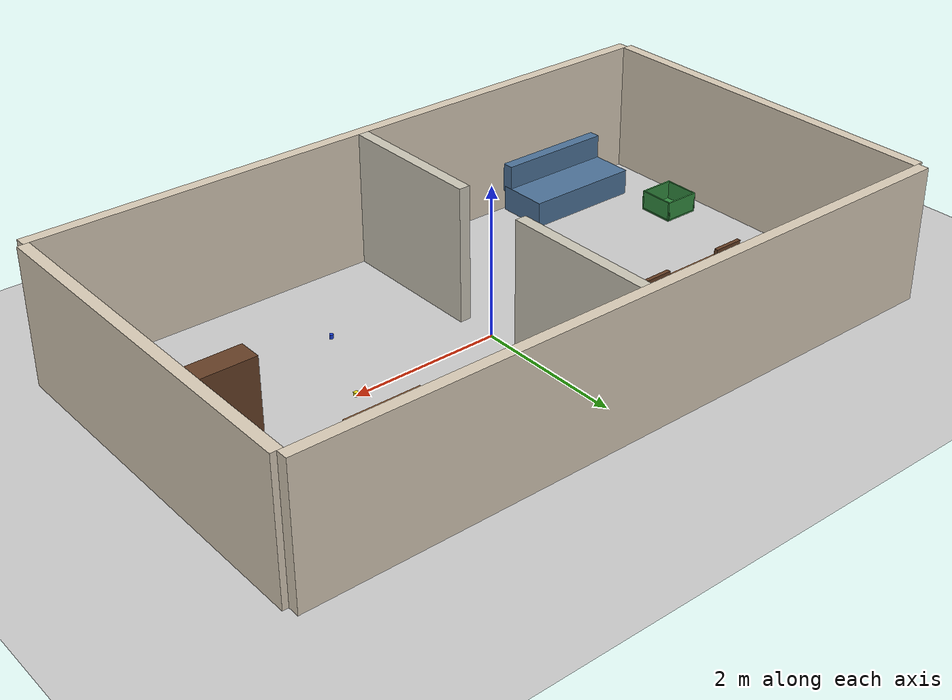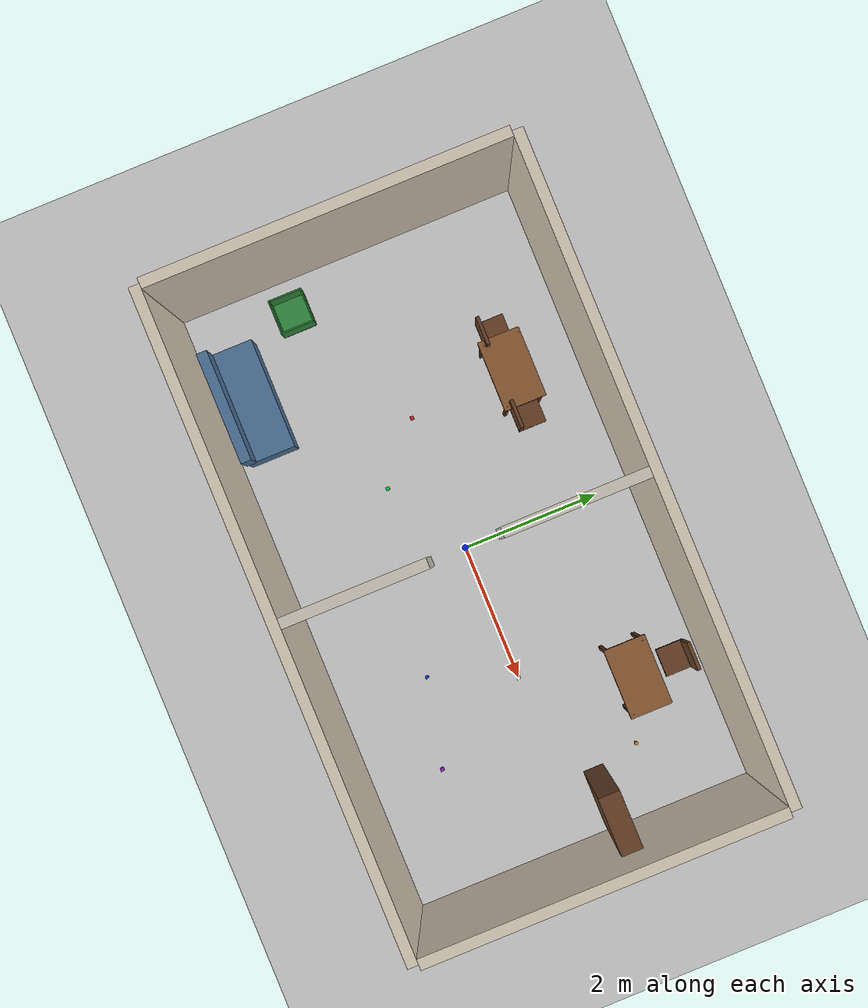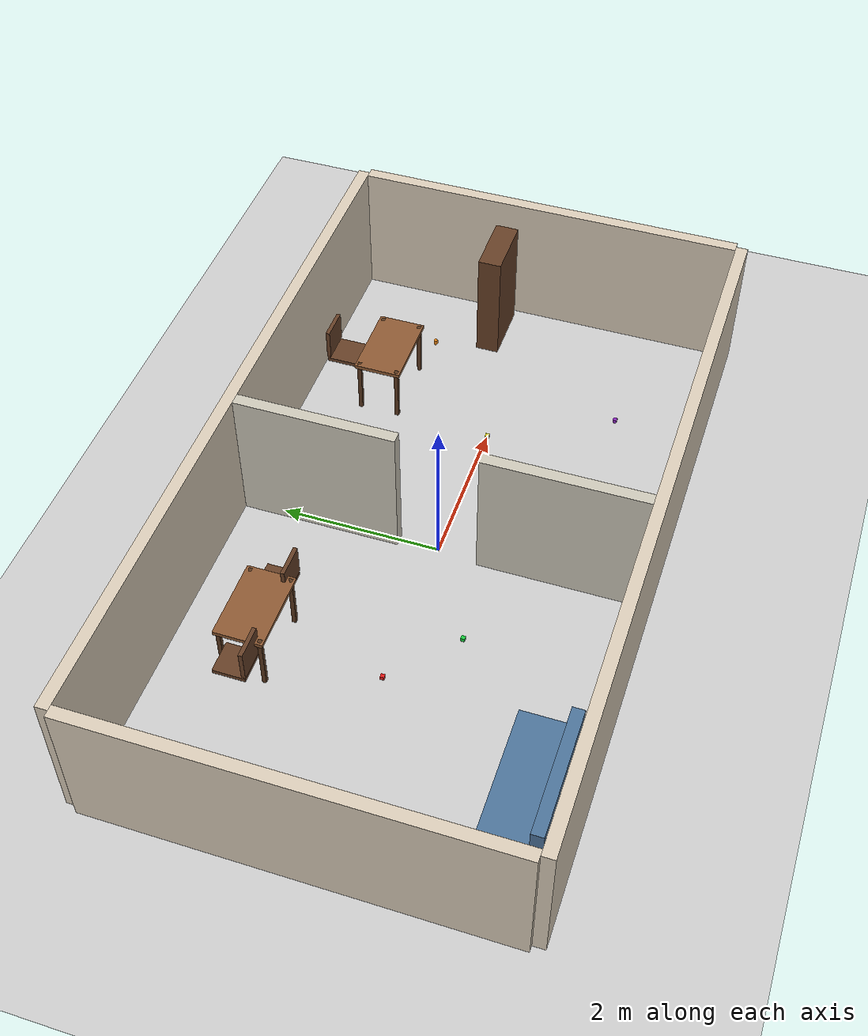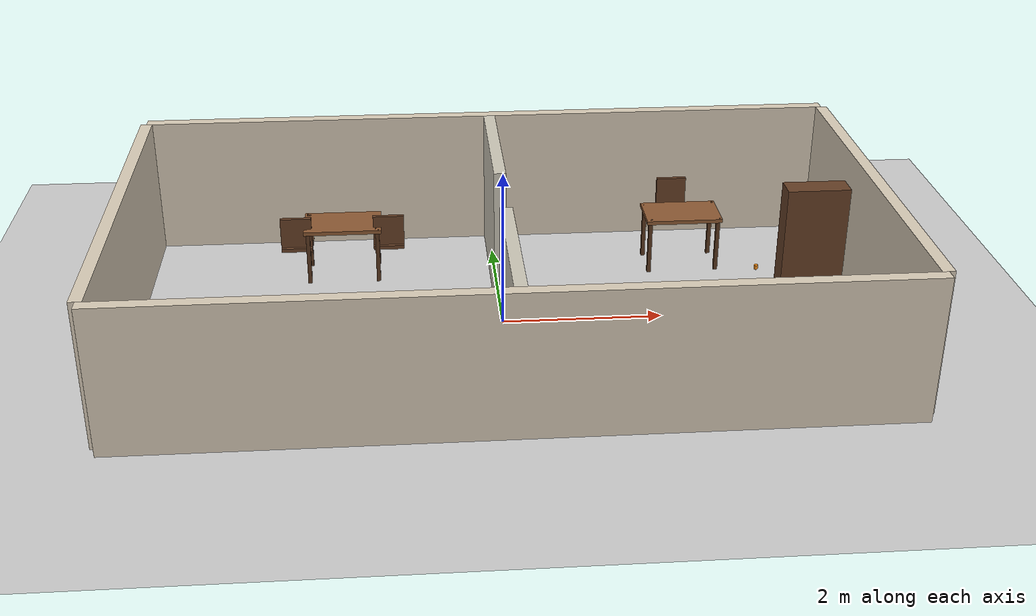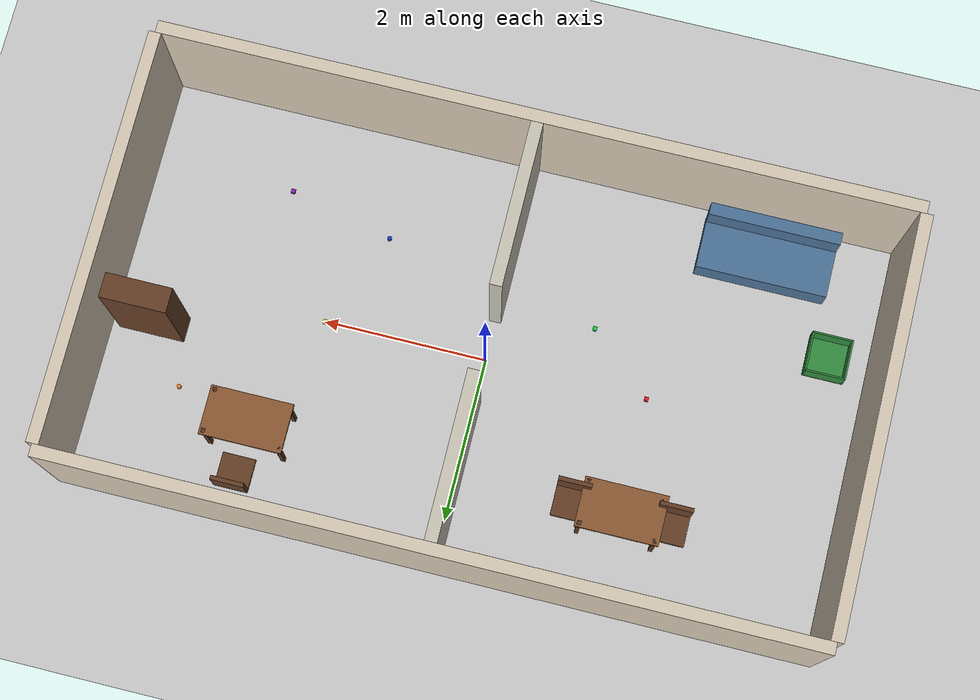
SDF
<?xml version="1.0" ?>
<sdf version="1.6">
  <world name="home">
    <include><uri>model://sun</uri></include>
    <include><uri>model://ground_plane</uri></include>

    <physics type="ode">
      <max_step_size>0.001</max_step_size>
      <real_time_update_rate>1000</real_time_update_rate>
      <real_time_factor>1.0</real_time_factor>
      <ode>
        <solver>
          <type>quick</type>
          <iters>50</iters>
          <sor>1.3</sor>
        </solver>
        <constraints>
          <cfm>0.0</cfm>
          <erp>0.2</erp>
          <contact_max_correcting_vel>100.0</contact_max_correcting_vel>
          <contact_surface_layer>0.001</contact_surface_layer>
        </constraints>
      </ode>
    </physics>

    <gravity>0 0 -9.81</gravity>

    <!-- Override ground plane friction (default is glass-smooth). -->
    <model name="ground_friction_override">
      <static>true</static>
      <link name="link">
        <collision name="c">
          <geometry><plane><normal>0 0 1</normal><size>20 20</size></plane></geometry>
          <surface>
            <friction>
              <ode><mu>0.8</mu><mu2>0.8</mu2></ode>
            </friction>
          </surface>
        </collision>
      </link>
    </model>

    <light name="room_light_A" type="point">
      <pose>-2 0 2.2 0 0 0</pose>
      <diffuse>0.9 0.9 0.9 1</diffuse>
      <specular>0.1 0.1 0.1 1</specular>
      <attenuation><range>8</range><linear>0.05</linear></attenuation>
      <cast_shadows>false</cast_shadows>
    </light>
    <light name="room_light_B" type="point">
      <pose>2.5 0 2.2 0 0 0</pose>
      <diffuse>0.9 0.9 0.9 1</diffuse>
      <specular>0.1 0.1 0.1 1</specular>
      <attenuation><range>8</range><linear>0.05</linear></attenuation>
      <cast_shadows>false</cast_shadows>
    </light>

    <!-- ======================================================
         WALLS — 0.15 m thick, 1.8 m tall
         ====================================================== -->
    <model name="walls">
      <static>true</static>

      <!-- North outer wall (y = +2.5) -->
      <link name="wall_north">
        <pose>0 2.575 0.9 0 0 0</pose>
        <collision name="c"><geometry><box><size>9.15 0.15 1.8</size></box></geometry></collision>
        <visual name="v">
          <geometry><box><size>9.15 0.15 1.8</size></box></geometry>
          <material><ambient>0.85 0.80 0.72 1</ambient><diffuse>0.85 0.80 0.72 1</diffuse></material>
        </visual>
      </link>

      <!-- South outer wall (y = -2.5) -->
      <link name="wall_south">
        <pose>0 -2.575 0.9 0 0 0</pose>
        <collision name="c"><geometry><box><size>9.15 0.15 1.8</size></box></geometry></collision>
        <visual name="v">
          <geometry><box><size>9.15 0.15 1.8</size></box></geometry>
          <material><ambient>0.85 0.80 0.72 1</ambient><diffuse>0.85 0.80 0.72 1</diffuse></material>
        </visual>
      </link>

      <!-- West outer wall (x = -4.5) -->
      <link name="wall_west">
        <pose>-4.575 0 0.9 0 0 0</pose>
        <collision name="c"><geometry><box><size>0.15 5.0 1.8</size></box></geometry></collision>
        <visual name="v">
          <geometry><box><size>0.15 5.0 1.8</size></box></geometry>
          <material><ambient>0.85 0.80 0.72 1</ambient><diffuse>0.85 0.80 0.72 1</diffuse></material>
        </visual>
      </link>

      <!-- East outer wall (x = +4.5) -->
      <link name="wall_east">
        <pose>4.575 0 0.9 0 0 0</pose>
        <collision name="c"><geometry><box><size>0.15 5.0 1.8</size></box></geometry></collision>
        <visual name="v">
          <geometry><box><size>0.15 5.0 1.8</size></box></geometry>
          <material><ambient>0.85 0.80 0.72 1</ambient><diffuse>0.85 0.80 0.72 1</diffuse></material>
        </visual>
      </link>

      <!-- Divider north half (from y=0.5 to y=2.5) -->
      <link name="wall_divider_n">
        <pose>0 1.5 0.9 0 0 0</pose>
        <collision name="c"><geometry><box><size>0.15 2.0 1.8</size></box></geometry></collision>
        <visual name="v">
          <geometry><box><size>0.15 2.0 1.8</size></box></geometry>
          <material><ambient>0.80 0.78 0.72 1</ambient><diffuse>0.80 0.78 0.72 1</diffuse></material>
        </visual>
      </link>

      <!-- Divider south half (from y=-2.5 to y=-0.5) -->
      <link name="wall_divider_s">
        <pose>0 -1.5 0.9 0 0 0</pose>
        <collision name="c"><geometry><box><size>0.15 2.0 1.8</size></box></geometry></collision>
        <visual name="v">
          <geometry><box><size>0.15 2.0 1.8</size></box></geometry>
          <material><ambient>0.80 0.78 0.72 1</ambient><diffuse>0.80 0.78 0.72 1</diffuse></material>
        </visual>
      </link>
    </model>

    <!-- ======================================================
         FURNITURE — Room A (x < 0)
         ====================================================== -->
    <model name="table_a">
      <static>true</static>
      <pose>-2 1.5 0.375 0 0 0</pose>
      <link name="link">
        <collision name="top"><geometry><box><size>1.0 0.6 0.05</size></box></geometry>
          <pose>0 0 0.35 0 0 0</pose></collision>
        <visual name="top_v"><geometry><box><size>1.0 0.6 0.05</size></box></geometry>
          <pose>0 0 0.35 0 0 0</pose>
          <material><ambient>0.55 0.35 0.20 1</ambient><diffuse>0.55 0.35 0.20 1</diffuse></material></visual>
        <!-- 4 legs -->
        <collision name="leg_fl"><pose> 0.45  0.25 0 0 0 0</pose>
          <geometry><box><size>0.05 0.05 0.75</size></box></geometry></collision>
        <visual name="leg_fl_v"><pose> 0.45  0.25 0 0 0 0</pose>
          <geometry><box><size>0.05 0.05 0.75</size></box></geometry>
          <material><ambient>0.35 0.22 0.12 1</ambient><diffuse>0.35 0.22 0.12 1</diffuse></material></visual>
        <collision name="leg_fr"><pose> 0.45 -0.25 0 0 0 0</pose>
          <geometry><box><size>0.05 0.05 0.75</size></box></geometry></collision>
        <visual name="leg_fr_v"><pose> 0.45 -0.25 0 0 0 0</pose>
          <geometry><box><size>0.05 0.05 0.75</size></box></geometry>
          <material><ambient>0.35 0.22 0.12 1</ambient><diffuse>0.35 0.22 0.12 1</diffuse></material></visual>
        <collision name="leg_rl"><pose>-0.45  0.25 0 0 0 0</pose>
          <geometry><box><size>0.05 0.05 0.75</size></box></geometry></collision>
        <visual name="leg_rl_v"><pose>-0.45  0.25 0 0 0 0</pose>
          <geometry><box><size>0.05 0.05 0.75</size></box></geometry>
          <material><ambient>0.35 0.22 0.12 1</ambient><diffuse>0.35 0.22 0.12 1</diffuse></material></visual>
        <collision name="leg_rr"><pose>-0.45 -0.25 0 0 0 0</pose>
          <geometry><box><size>0.05 0.05 0.75</size></box></geometry></collision>
        <visual name="leg_rr_v"><pose>-0.45 -0.25 0 0 0 0</pose>
          <geometry><box><size>0.05 0.05 0.75</size></box></geometry>
          <material><ambient>0.35 0.22 0.12 1</ambient><diffuse>0.35 0.22 0.12 1</diffuse></material></visual>
      </link>
    </model>

    <model name="chair_a1">
      <static>true</static>
      <pose>-2.6 1.5 0.25 0 0 0</pose>
      <link name="link">
        <collision name="seat"><geometry><box><size>0.4 0.4 0.05</size></box></geometry>
          <pose>0 0 0.2 0 0 0</pose></collision>
        <visual name="seat_v"><geometry><box><size>0.4 0.4 0.05</size></box></geometry>
          <pose>0 0 0.2 0 0 0</pose>
          <material><ambient>0.40 0.25 0.15 1</ambient><diffuse>0.40 0.25 0.15 1</diffuse></material></visual>
        <collision name="back"><geometry><box><size>0.4 0.05 0.4</size></box></geometry>
          <pose>0 -0.18 0.45 0 0 0</pose></collision>
        <visual name="back_v"><geometry><box><size>0.4 0.05 0.4</size></box></geometry>
          <pose>0 -0.18 0.45 0 0 0</pose>
          <material><ambient>0.40 0.25 0.15 1</ambient><diffuse>0.40 0.25 0.15 1</diffuse></material></visual>
      </link>
    </model>

    <model name="chair_a2">
      <static>true</static>
      <pose>-1.4 1.5 0.25 0 0 0</pose>
      <link name="link">
        <collision name="seat"><geometry><box><size>0.4 0.4 0.05</size></box></geometry>
          <pose>0 0 0.2 0 0 0</pose></collision>
        <visual name="seat_v"><geometry><box><size>0.4 0.4 0.05</size></box></geometry>
          <pose>0 0 0.2 0 0 0</pose>
          <material><ambient>0.40 0.25 0.15 1</ambient><diffuse>0.40 0.25 0.15 1</diffuse></material></visual>
        <collision name="back"><geometry><box><size>0.4 0.05 0.4</size></box></geometry>
          <pose>0 -0.18 0.45 0 0 0</pose></collision>
        <visual name="back_v"><geometry><box><size>0.4 0.05 0.4</size></box></geometry>
          <pose>0 -0.18 0.45 0 0 0</pose>
          <material><ambient>0.40 0.25 0.15 1</ambient><diffuse>0.40 0.25 0.15 1</diffuse></material></visual>
      </link>
    </model>

    <model name="couch">
      <static>true</static>
      <pose>-3 -2.0 0 0 0 0</pose>
      <link name="link">
        <!-- seat base -->
        <collision name="seat"><pose>0 0 0.25 0 0 0</pose>
          <geometry><box><size>1.6 0.7 0.35</size></box></geometry></collision>
        <visual name="seat_v"><pose>0 0 0.25 0 0 0</pose>
          <geometry><box><size>1.6 0.7 0.35</size></box></geometry>
          <material><ambient>0.30 0.45 0.60 1</ambient><diffuse>0.30 0.45 0.60 1</diffuse></material></visual>
        <!-- back -->
        <collision name="back"><pose>0 -0.30 0.55 0 0 0</pose>
          <geometry><box><size>1.6 0.15 0.4</size></box></geometry></collision>
        <visual name="back_v"><pose>0 -0.30 0.55 0 0 0</pose>
          <geometry><box><size>1.6 0.15 0.4</size></box></geometry>
          <material><ambient>0.30 0.45 0.60 1</ambient><diffuse>0.30 0.45 0.60 1</diffuse></material></visual>
      </link>
    </model>

    <!-- ======================================================
         FURNITURE — Room B (x > 0)
         ====================================================== -->
    <model name="table_b">
      <static>true</static>
      <pose>2.5 1.5 0.375 0 0 0</pose>
      <link name="link">
        <collision name="top"><geometry><box><size>1.0 0.6 0.05</size></box></geometry>
          <pose>0 0 0.35 0 0 0</pose></collision>
        <visual name="top_v"><geometry><box><size>1.0 0.6 0.05</size></box></geometry>
          <pose>0 0 0.35 0 0 0</pose>
          <material><ambient>0.55 0.35 0.20 1</ambient><diffuse>0.55 0.35 0.20 1</diffuse></material></visual>
        <collision name="leg_fl"><pose> 0.45  0.25 0 0 0 0</pose>
          <geometry><box><size>0.05 0.05 0.75</size></box></geometry></collision>
        <visual name="leg_fl_v"><pose> 0.45  0.25 0 0 0 0</pose>
          <geometry><box><size>0.05 0.05 0.75</size></box></geometry>
          <material><ambient>0.35 0.22 0.12 1</ambient><diffuse>0.35 0.22 0.12 1</diffuse></material></visual>
        <collision name="leg_fr"><pose> 0.45 -0.25 0 0 0 0</pose>
          <geometry><box><size>0.05 0.05 0.75</size></box></geometry></collision>
        <visual name="leg_fr_v"><pose> 0.45 -0.25 0 0 0 0</pose>
          <geometry><box><size>0.05 0.05 0.75</size></box></geometry>
          <material><ambient>0.35 0.22 0.12 1</ambient><diffuse>0.35 0.22 0.12 1</diffuse></material></visual>
        <collision name="leg_rl"><pose>-0.45  0.25 0 0 0 0</pose>
          <geometry><box><size>0.05 0.05 0.75</size></box></geometry></collision>
        <visual name="leg_rl_v"><pose>-0.45  0.25 0 0 0 0</pose>
          <geometry><box><size>0.05 0.05 0.75</size></box></geometry>
          <material><ambient>0.35 0.22 0.12 1</ambient><diffuse>0.35 0.22 0.12 1</diffuse></material></visual>
        <collision name="leg_rr"><pose>-0.45 -0.25 0 0 0 0</pose>
          <geometry><box><size>0.05 0.05 0.75</size></box></geometry></collision>
        <visual name="leg_rr_v"><pose>-0.45 -0.25 0 0 0 0</pose>
          <geometry><box><size>0.05 0.05 0.75</size></box></geometry>
          <material><ambient>0.35 0.22 0.12 1</ambient><diffuse>0.35 0.22 0.12 1</diffuse></material></visual>
      </link>
    </model>

    <model name="chair_b1">
      <static>true</static>
      <pose>2.5 2.1 0.25 0 0 0</pose>
      <link name="link">
        <collision name="seat"><geometry><box><size>0.4 0.4 0.05</size></box></geometry>
          <pose>0 0 0.2 0 0 0</pose></collision>
        <visual name="seat_v"><geometry><box><size>0.4 0.4 0.05</size></box></geometry>
          <pose>0 0 0.2 0 0 0</pose>
          <material><ambient>0.40 0.25 0.15 1</ambient><diffuse>0.40 0.25 0.15 1</diffuse></material></visual>
        <collision name="back"><geometry><box><size>0.4 0.05 0.4</size></box></geometry>
          <pose>0 0.18 0.45 0 0 0</pose></collision>
        <visual name="back_v"><geometry><box><size>0.4 0.05 0.4</size></box></geometry>
          <pose>0 0.18 0.45 0 0 0</pose>
          <material><ambient>0.40 0.25 0.15 1</ambient><diffuse>0.40 0.25 0.15 1</diffuse></material></visual>
      </link>
    </model>

    <model name="shelf">
      <static>true</static>
      <pose>4.0 0.5 0.75 0 0 0</pose>
      <link name="link">
        <collision name="body"><geometry><box><size>0.8 0.3 1.5</size></box></geometry></collision>
        <visual name="body_v"><geometry><box><size>0.8 0.3 1.5</size></box></geometry>
          <material><ambient>0.40 0.25 0.15 1</ambient><diffuse>0.40 0.25 0.15 1</diffuse></material></visual>
      </link>
    </model>

    <model name="collection_box">
      <static>true</static>
      <pose>-4 -1 0 0 0 0</pose>
      <link name="link">
        <!-- floor -->
        <collision name="floor"><pose>0 0 0.01 0 0 0</pose>
          <geometry><box><size>0.5 0.5 0.02</size></box></geometry></collision>
        <visual name="floor_v"><pose>0 0 0.01 0 0 0</pose>
          <geometry><box><size>0.5 0.5 0.02</size></box></geometry>
          <material><ambient>0.20 0.55 0.25 1</ambient><diffuse>0.20 0.55 0.25 1</diffuse></material></visual>
        <!-- side walls -->
        <collision name="wall_n"><pose>0  0.24 0.15 0 0 0</pose>
          <geometry><box><size>0.5 0.02 0.25</size></box></geometry></collision>
        <visual name="wall_n_v"><pose>0  0.24 0.15 0 0 0</pose>
          <geometry><box><size>0.5 0.02 0.25</size></box></geometry>
          <material><ambient>0.20 0.55 0.25 1</ambient><diffuse>0.20 0.55 0.25 1</diffuse></material></visual>
        <collision name="wall_s"><pose>0 -0.24 0.15 0 0 0</pose>
          <geometry><box><size>0.5 0.02 0.25</size></box></geometry></collision>
        <visual name="wall_s_v"><pose>0 -0.24 0.15 0 0 0</pose>
          <geometry><box><size>0.5 0.02 0.25</size></box></geometry>
          <material><ambient>0.20 0.55 0.25 1</ambient><diffuse>0.20 0.55 0.25 1</diffuse></material></visual>
        <collision name="wall_e"><pose> 0.24 0 0.15 0 0 0</pose>
          <geometry><box><size>0.02 0.5 0.25</size></box></geometry></collision>
        <visual name="wall_e_v"><pose> 0.24 0 0.15 0 0 0</pose>
          <geometry><box><size>0.02 0.5 0.25</size></box></geometry>
          <material><ambient>0.20 0.55 0.25 1</ambient><diffuse>0.20 0.55 0.25 1</diffuse></material></visual>
        <collision name="wall_w"><pose>-0.24 0 0.15 0 0 0</pose>
          <geometry><box><size>0.02 0.5 0.25</size></box></geometry></collision>
        <visual name="wall_w_v"><pose>-0.24 0 0.15 0 0 0</pose>
          <geometry><box><size>0.02 0.5 0.25</size></box></geometry>
          <material><ambient>0.20 0.55 0.25 1</ambient><diffuse>0.20 0.55 0.25 1</diffuse></material></visual>
      </link>
    </model>

    <!-- Inertia for a 0.05 cube, mass 0.15:
         I = m/12 * (a^2+a^2) = 0.15/12 * 0.005 = 6.25e-5   (per axis) -->
    <model name="obj_red_cube">
      <pose>-2 0 0.03 0 0 0</pose>
      <link name="link">
        <inertial>
          <mass>0.15</mass>
          <inertia><ixx>6.25e-5</ixx><ixy>0</ixy><ixz>0</ixz>
                   <iyy>6.25e-5</iyy><iyz>0</iyz><izz>6.25e-5</izz></inertia>
        </inertial>
        <collision name="c"><geometry><box><size>0.05 0.05 0.05</size></box></geometry>
          <surface><friction><ode><mu>1.0</mu><mu2>1.0</mu2></ode></friction>
                   <contact><ode><kp>5e5</kp><kd>50</kd><min_depth>0.0005</min_depth></ode></contact></surface></collision>
        <visual name="v"><geometry><box><size>0.05 0.05 0.05</size></box></geometry>
          <material><ambient>0.90 0.10 0.10 1</ambient><diffuse>0.90 0.10 0.10 1</diffuse></material></visual>
      </link>
    </model>

    <model name="obj_green_cube">
      <pose>-1.2 -0.7 0.03 0 0 0</pose>
      <link name="link">
        <inertial><mass>0.15</mass>
          <inertia><ixx>6.25e-5</ixx><ixy>0</ixy><ixz>0</ixz>
                   <iyy>6.25e-5</iyy><iyz>0</iyz><izz>6.25e-5</izz></inertia></inertial>
        <collision name="c"><geometry><box><size>0.05 0.05 0.05</size></box></geometry>
          <surface><friction><ode><mu>1.0</mu><mu2>1.0</mu2></ode></friction>
                   <contact><ode><kp>5e5</kp><kd>50</kd><min_depth>0.0005</min_depth></ode></contact></surface></collision>
        <visual name="v"><geometry><box><size>0.05 0.05 0.05</size></box></geometry>
          <material><ambient>0.10 0.80 0.25 1</ambient><diffuse>0.10 0.80 0.25 1</diffuse></material></visual>
      </link>
    </model>

    <!-- Cylinder r=0.025, h=0.06, mass 0.15:
         Izz = 1/2 m r^2  = 4.69e-5
         Ixx = Iyy = m/12(3r^2+h^2) = 0.15/12*(3*6.25e-4 + 3.6e-3)
               = 0.0125*(0.001875+0.0036) = 6.84e-5 -->
    <model name="obj_blue_cylinder">
      <pose>1.5 -1.2 0.03 0 0 0</pose>
      <link name="link">
        <inertial><mass>0.15</mass>
          <inertia><ixx>6.84e-5</ixx><ixy>0</ixy><ixz>0</ixz>
                   <iyy>6.84e-5</iyy><iyz>0</iyz><izz>4.69e-5</izz></inertia></inertial>
        <collision name="c"><geometry><cylinder><radius>0.025</radius><length>0.06</length></cylinder></geometry>
          <surface><friction><ode><mu>1.0</mu><mu2>1.0</mu2></ode></friction>
                   <contact><ode><kp>5e5</kp><kd>50</kd><min_depth>0.0005</min_depth></ode></contact></surface></collision>
        <visual name="v"><geometry><cylinder><radius>0.025</radius><length>0.06</length></cylinder></geometry>
          <material><ambient>0.10 0.25 0.85 1</ambient><diffuse>0.10 0.25 0.85 1</diffuse></material></visual>
      </link>
    </model>

    <model name="obj_yellow_cube">
      <pose>2.0 0.0 0.03 0 0 0</pose>
      <link name="link">
        <inertial><mass>0.15</mass>
          <inertia><ixx>6.25e-5</ixx><ixy>0</ixy><ixz>0</ixz>
                   <iyy>6.25e-5</iyy><iyz>0</iyz><izz>6.25e-5</izz></inertia></inertial>
        <collision name="c"><geometry><box><size>0.05 0.05 0.05</size></box></geometry>
          <surface><friction><ode><mu>1.0</mu><mu2>1.0</mu2></ode></friction>
                   <contact><ode><kp>5e5</kp><kd>50</kd><min_depth>0.0005</min_depth></ode></contact></surface></collision>
        <visual name="v"><geometry><box><size>0.05 0.05 0.05</size></box></geometry>
          <material><ambient>0.95 0.90 0.15 1</ambient><diffuse>0.95 0.90 0.15 1</diffuse></material></visual>
      </link>
    </model>

    <model name="obj_orange_cylinder">
      <pose>3.5 1.2 0.03 0 0 0</pose>
      <link name="link">
        <inertial><mass>0.15</mass>
          <inertia><ixx>6.84e-5</ixx><ixy>0</ixy><ixz>0</ixz>
                   <iyy>6.84e-5</iyy><iyz>0</iyz><izz>4.69e-5</izz></inertia></inertial>
        <collision name="c"><geometry><cylinder><radius>0.025</radius><length>0.06</length></cylinder></geometry>
          <surface><friction><ode><mu>1.0</mu><mu2>1.0</mu2></ode></friction>
                   <contact><ode><kp>5e5</kp><kd>50</kd><min_depth>0.0005</min_depth></ode></contact></surface></collision>
        <visual name="v"><geometry><cylinder><radius>0.025</radius><length>0.06</length></cylinder></geometry>
          <material><ambient>0.95 0.55 0.10 1</ambient><diffuse>0.95 0.55 0.10 1</diffuse></material></visual>
      </link>
    </model>

    <model name="obj_purple_cube">
      <pose>2.8 -1.5 0.03 0 0 0</pose>
      <link name="link">
        <inertial><mass>0.15</mass>
          <inertia><ixx>6.25e-5</ixx><ixy>0</ixy><ixz>0</ixz>
                   <iyy>6.25e-5</iyy><iyz>0</iyz><izz>6.25e-5</izz></inertia></inertial>
        <collision name="c"><geometry><box><size>0.05 0.05 0.05</size></box></geometry>
          <surface><friction><ode><mu>1.0</mu><mu2>1.0</mu2></ode></friction>
                   <contact><ode><kp>5e5</kp><kd>50</kd><min_depth>0.0005</min_depth></ode></contact></surface></collision>
        <visual name="v"><geometry><box><size>0.05 0.05 0.05</size></box></geometry>
          <material><ambient>0.55 0.15 0.75 1</ambient><diffuse>0.55 0.15 0.75 1</diffuse></material></visual>
      </link>
    </model>

  </world>
</sdf>
